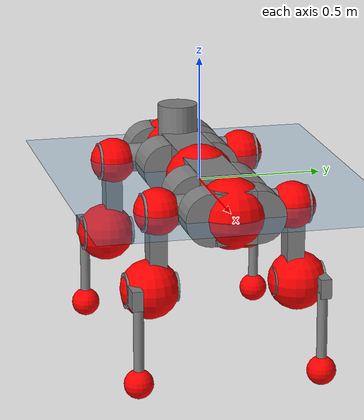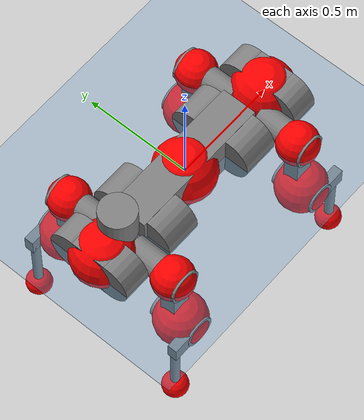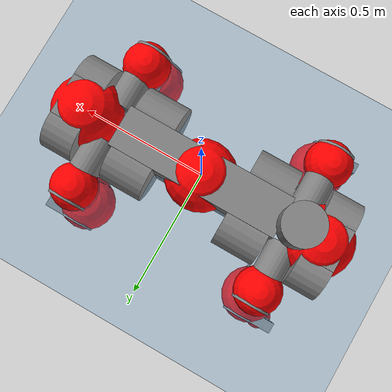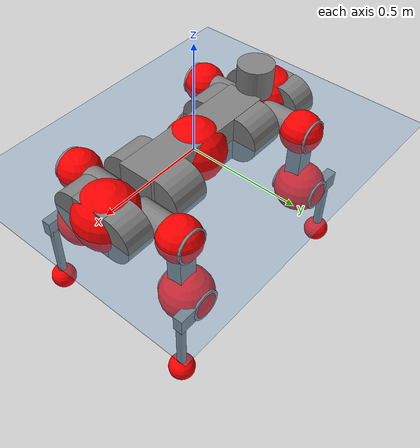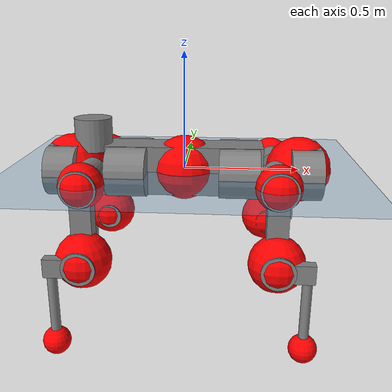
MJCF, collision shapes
<mujoco model="anymal_c">
  <compiler angle="radian" assetdir="assets" balanceinertia="true" inertiafromgeom="false"/>

  <option timestep="0.005" density="1.2" viscosity="2e-05"/>

  <size nkey="1"/>

  <visual>
    <quality shadowsize="8192"/>
    <map shadowclip="0.5"/>
  </visual>

  <default>
    <default class="/">
      <material specular="0" shininess="0.25"/>
      <geom contype="0" conaffinity="0" group="1" solref="-1000 -80"/>
      <site size="0.01 0.005 0.005" group="5"/>
      <general forcelimited="true" forcerange="-80 80" biastype="affine" gainprm="80" biasprm="0 -80 -2"/>
      <default class="anymal_c">
        <joint armature="0.01" damping="0.01" frictionloss="0.1"/>
        <default class="visual">
          <geom type="mesh" group="2"/>
          <default class="visual_zflip"/>
        </default>
        <default class="collision">
          <geom type="cylinder" group="3"/>
          <default class="foot">
            <geom size="0.03 0 0" type="sphere" condim="6" priority="1" friction="0.8 0.02 0.01" solimp="0.015 1 0.03"/>
          </default>
        </default>
      </default>
      <default class="reward_collision_sphere">
        <geom group="5" rgba="1 0 0 1"/>
      </default>
    </default>
  </default>

  <asset>
    <texture type="skybox" colorspace="auto" name="//unnamed_texture_0" builtin="gradient" rgb1="0.95 0.95 0.95" rgb2="0.95 0.95 0.95" width="100" height="600"/>
    <texture type="2d" colorspace="auto" name="texplane" builtin="checker" rgb1="0.345 0.575 0.748" rgb2="0.345 0.575 0.748" markrgb="1 1 1" width="512" height="512"/>
    <texture type="2d" colorspace="linear" name="base" file="base.png"/>
    <texture type="2d" colorspace="linear" name="top_shell" file="top_shell.png"/>
    <texture type="2d" colorspace="linear" name="bottom_shell" file="bottom_shell.png"/>
    <texture type="2d" colorspace="linear" name="remote" file="remote.png"/>
    <texture type="2d" colorspace="linear" name="hatch" file="hatch.png"/>
    <texture type="2d" colorspace="linear" name="handle" file="handle.png"/>
    <texture type="2d" colorspace="linear" name="face" file="face.png"/>
    <texture type="2d" colorspace="linear" name="battery" file="battery.png"/>
    <texture type="2d" colorspace="linear" name="lidar_cage" file="lidar_cage.png"/>
    <texture type="2d" colorspace="linear" name="depth_camera" file="depth_camera.png"/>
    <texture type="2d" colorspace="linear" name="wide_angle_camera" file="wide_angle_camera.png"/>
    <texture type="2d" colorspace="linear" name="lidar" file="lidar.png"/>
    <texture type="2d" colorspace="linear" name="drive" file="drive.png"/>
    <texture type="2d" colorspace="linear" name="hip_l" file="hip_l.png"/>
    <texture type="2d" colorspace="linear" name="shank_l" file="shank_l.png"/>
    <texture type="2d" colorspace="linear" name="foot" file="foot.png"/>
    <texture type="2d" colorspace="linear" name="thigh" file="thigh.png"/>
    <texture type="2d" colorspace="linear" name="shank_r" file="shank_r.png"/>
    <texture type="2d" colorspace="linear" name="hip_r" file="hip_r.png"/>
    <material name="MatPlane" class="/" texture="texplane" texuniform="true" texrepeat="2 2" specular="0.9" shininess="0.5"/>
    <material name="black_plastic" class="/" rgba="0.007 0.007 0.007 1"/>
    <material name="green" class="/" rgba="0.052 0.178 0.033 1"/>
    <material name="red" class="/" rgba="0.178 0.006 0.005 1"/>
    <material name="yellow" class="/" rgba="0.178 0.119 0.006 1"/>
    <material name="lwl" class="/" rgba="0.8 0.8 0.8 1"/>
    <material name="base" class="/" texture="base"/>
    <material name="top_shell" class="/" texture="top_shell"/>
    <material name="bottom_shell" class="/" texture="bottom_shell"/>
    <material name="hip_l" class="/" texture="hip_l"/>
    <material name="thigh" class="/" texture="thigh"/>
    <material name="shank_l" class="/" texture="shank_l"/>
    <material name="foot" class="/" texture="foot"/>
    <material name="hip_r" class="/" texture="hip_r"/>
    <material name="shank" class="/" texture="shank_r"/>
    <material name="hatch" class="/" texture="hatch"/>
    <material name="remote" class="/" texture="remote"/>
    <material name="handle" class="/" texture="handle"/>
    <material name="face" class="/" texture="face"/>
    <material name="depth_camera" class="/" texture="depth_camera"/>
    <material name="wide_angle_camera" class="/" texture="wide_angle_camera"/>
    <material name="battery" class="/" texture="battery"/>
    <material name="lidar_cage" class="/" texture="lidar_cage"/>
    <material name="lidar" class="/" texture="lidar"/>
    <material name="drive" class="/" texture="drive"/>
    <mesh name="base_0" class="/" file="base_0.obj"/>
    <mesh name="base_1" class="/" file="base_1.obj"/>
    <mesh name="base_2" class="/" file="base_2.obj"/>
    <mesh name="base_3" class="/" file="base_3.obj"/>
    <mesh name="base_4" class="/" file="base_4.obj"/>
    <mesh name="base_5" class="/" file="base_5.obj"/>
    <mesh name="top_shell" class="/" file="top_shell.obj"/>
    <mesh name="bottom_shell" class="/" file="bottom_shell.obj"/>
    <mesh name="remote" class="/" file="remote.obj"/>
    <mesh name="handle" class="/" file="handle.obj"/>
    <mesh name="face" class="/" file="face.obj"/>
    <mesh name="wide_angle_camera" class="/" file="wide_angle_camera.obj"/>
    <mesh name="depth_camera" class="/" file="depth_camera.obj"/>
    <mesh name="battery" class="/" file="battery.obj"/>
    <mesh name="lidar_cage" class="/" file="lidar_cage.obj"/>
    <mesh name="lidar" class="/" file="lidar.obj"/>
    <mesh name="drive" class="/" file="drive.obj"/>
    <mesh name="hip_l" class="/" file="hip_l.obj"/>
    <mesh name="thigh" class="/" file="thigh.obj"/>
    <mesh name="shank_l" class="/" file="shank_l.obj"/>
    <mesh name="foot" class="/" file="foot.obj"/>
    <mesh name="hip_r" class="/" file="hip_r.obj"/>
    <mesh name="hatch" class="/" file="hatch.obj"/>
    <mesh name="shank_r" class="/" file="shank_r.obj"/>
  </asset>

  <worldbody>
    <geom name="floor" class="/" size="100 100 0.125" type="plane" group="0" material="MatPlane"/>
    <light name="toplight_shadow" class="/" pos="0 0 5" dir="0.0990148 0.0990148 -0.990148" type="directional" ambient="0.04 0.04 0.04" diffuse="0.55 0.55 0.55" specular="0.12 0.12 0.12"/>
    <light name="toplight_fill" class="/" pos="0 0 5" dir="0.0990148 0.0990148 -0.990148" type="directional" castshadow="false" ambient="0.04 0.04 0.04" diffuse="0.3 0.3 0.3" specular="0.08 0.08 0.08"/>
    <body name="trunk" childclass="anymal_c" pos="0.000728768 0.00279771 0.00187659" quat="1 -4.84342e-05 3.12774e-05 -4.36047e-05">
      <inertial pos="0.00445541 0.00349532 0.0502554" quat="0.486094 0.517472 0.478039 0.517121" mass="31.6172" diaginertia="1.04537 2.48714 0.33668"/>
      <joint name="//unnamed_joint_0" type="free" armature="0" damping="0" frictionloss="0"/>
      <geom name="//unnamed_geom_1" class="visual" material="green" mesh="base_0"/>
      <geom name="//unnamed_geom_2" class="visual" material="yellow" mesh="base_1"/>
      <geom name="//unnamed_geom_3" class="visual" material="red" mesh="base_2"/>
      <geom name="//unnamed_geom_4" class="visual" material="black_plastic" mesh="base_3"/>
      <geom name="//unnamed_geom_5" class="visual" material="lwl" mesh="base_4"/>
      <geom name="//unnamed_geom_6" class="visual" material="base" mesh="base_5"/>
      <geom name="trunk_1" class="collision" size="0.340821 0.0822673 0.105772" type="box"/>
      <geom name="trunk_2" class="collision" size="0.105772 0.0852054" pos="0.240191 0.0932113 0" quat="0.707107 0 0.707107 0"/>
      <geom name="trunk_3" class="collision" size="0.105772 0.0852054" pos="-0.240191 0.0932113 0" quat="0.707107 0 0.707107 0"/>
      <geom name="trunk_4" class="collision" size="0.105772 0.0852054" pos="0.240191 -0.0932113 0" quat="0.707107 0 0.707107 0"/>
      <geom name="trunk_5" class="collision" size="0.105772 0.0852054" pos="-0.240191 -0.0932113 0" quat="0.707107 0 0.707107 0"/>
      <geom name="//unnamed_geom_12" class="visual" material="top_shell" mesh="top_shell"/>
      <geom name="//unnamed_geom_13" class="visual" material="bottom_shell" mesh="bottom_shell"/>
      <geom name="//unnamed_geom_14" class="visual" material="remote" mesh="remote"/>
      <geom name="//unnamed_geom_15" class="visual" material="handle" mesh="handle"/>
      <geom name="//unnamed_geom_16" class="visual" pos="0.457743 0 0" quat="1 0 0 0" material="face" mesh="face"/>
      <geom name="trunk_6" class="collision" size="0.0646386 0.0822673 0.105772" pos="0.518481 0 0" type="box"/>
      <geom name="//unnamed_geom_18" class="collision" size="0.105772 0.0646386" pos="0.518481 0.0932113 0" quat="0.707107 0 0.707107 0"/>
      <geom name="//unnamed_geom_19" class="collision" size="0.105772 0.0646386" pos="0.518481 -0.0932113 0" quat="0.707107 0 0.707107 0"/>
      <geom name="//unnamed_geom_20" class="visual" pos="0.509812 0 -0.0317126" quat="0.965926 0 0.258819 0" material="depth_camera" mesh="depth_camera"/>
      <geom name="//unnamed_geom_21" class="visual" pos="0.56652 0 0.0163146" material="wide_angle_camera" mesh="wide_angle_camera"/>
      <geom name="//unnamed_geom_22" class="visual_zflip" pos="-0.457743 0 0" quat="0 0 0 1" material="face" mesh="face"/>
      <geom name="trunk_7" class="collision" size="0.0646386 0.0822673 0.105772" pos="-0.518481 0 0" quat="0 0 0 1" type="box"/>
      <geom name="//unnamed_geom_24" class="collision" size="0.105772 0.0646386" pos="-0.518481 -0.0932113 0" quat="0 -0.707107 0 0.707107"/>
      <geom name="//unnamed_geom_25" class="collision" size="0.105772 0.0646386" pos="-0.518481 0.0932113 0" quat="0 -0.707107 0 0.707107"/>
      <geom name="//unnamed_geom_26" class="visual" pos="-0.509812 0 -0.0317126" quat="0 -0.258819 0 0.965926" material="depth_camera" mesh="depth_camera"/>
      <geom name="//unnamed_geom_27" class="visual_zflip" pos="-0.56652 0 0.0163146" quat="0 0 0 1" material="wide_angle_camera" mesh="wide_angle_camera"/>
      <geom name="//unnamed_geom_28" class="visual" material="battery" mesh="battery"/>
      <geom name="//unnamed_geom_29" class="visual" pos="0 0.104795 0.0317696" quat="0.683013 -0.183013 0.183013 0.683013" material="depth_camera" mesh="depth_camera"/>
      <geom name="//unnamed_geom_30" class="visual" pos="0 -0.104795 0.0317696" quat="0.683013 0.183013 0.183013 -0.683013" material="depth_camera" mesh="depth_camera"/>
      <geom name="//unnamed_geom_31" class="visual" pos="-0.401975 0 0.080102" quat="1 0 0 0" material="lidar_cage" mesh="lidar_cage"/>
      <geom name="trunk_8" class="collision" size="0.0822673 0.0705148" pos="-0.401975 0 0.145491"/>
      <geom name="//unnamed_geom_33" class="visual" pos="-0.401975 8.92856e-05 0.154973" quat="0.707107 0 0 -0.707107" material="lidar" mesh="lidar"/>
      <geom name="//unnamed_geom_34" class="visual" pos="0.331188 0.138399 4.17051e-09" quat="0.258819 0.965926 0 0" material="drive" mesh="drive"/>
      <geom name="//unnamed_geom_35" class="visual" pos="0.331188 -0.138399 -4.17051e-09" quat="0.258819 -0.965926 0 0" material="drive" mesh="drive"/>
      <geom name="//unnamed_geom_36" class="visual" pos="-0.331188 0.138399 -4.17051e-09" quat="0 0 0.965926 -0.258819" material="drive" mesh="drive"/>
      <geom name="//unnamed_geom_37" class="visual" pos="-0.331188 -0.138399 4.17051e-09" quat="0 0 -0.965926 -0.258819" material="drive" mesh="drive"/>
      <geom name="//unnamed_geom_38" class="visual" pos="0.128102 0 0.079557" quat="1 0 0 0" material="hatch" mesh="hatch"/>
      <geom name="//unnamed_geom_39" class="reward_collision_sphere" size="0.14103"/>
      <geom name="//unnamed_geom_40" class="reward_collision_sphere" size="0.14103" pos="0.496947 0 0"/>
      <geom name="//unnamed_geom_41" class="reward_collision_sphere" size="0.14103" pos="-0.496947 0 0"/>
      <site name="imu" pos="0.262277 0.00885141 0.0643527" size="0.0117525"/>
      <camera name="track" pos="0 -2.66318 0" quat="0.707107 0.707107 0 0" mode="trackcom"/>
      <camera name="ego_camera" pos="0.496947 0 -0.0435929" quat="-0.5 -0.5 0.5 0.5"/>
      <body name="LF_HIP" pos="0.329877 0.131754 -0.00479988" quat="0.257987 0.966148 0.00106445 -0.000762132">
        <inertial pos="0.060428 -0.0204923 -0.00873386" quat="-0.134995 0.71139 -0.128177 0.677695" mass="4.63713" diaginertia="0.00962638 0.0219147 0.00497254"/>
        <joint name="LF_HAA" pos="0 0 0" axis="1 -0.000189519 0.000392815" range="-0.860534 0.488245" armature="0.011114" damping="0.0210976" frictionloss="0.108457"/>
        <geom name="//unnamed_geom_42" class="visual" pos="0 0.000245332 -4.02957e-05" quat="0.258819 -0.965926 0 0" material="hip_l" mesh="hip_l"/>
        <geom name="//unnamed_geom_43" class="visual" pos="0.0661492 -0.0830602 -0.0461666" quat="0.183013 -0.683013 0.683013 0.183013" material="drive" mesh="drive"/>
        <geom name="//unnamed_geom_44" class="collision" size="0.0587623 0.0822673" pos="0.0661492 -0.0159255 -0.00752522" quat="-0.353553 -0.612372 0.612372 -0.353553"/>
        <body name="LF_THIGH" pos="0.0659354 -0.103508 -0.0471063" quat="0.183058 -0.683012 0.683264 0.182027">
          <inertial pos="0.0320861 -0.000744244 -0.265513" quat="0.993394 0.013126 -0.0848968 0.0760863" mass="4.98148" diaginertia="0.051578 0.126476 0.00636715"/>
          <joint name="LF_HFE" pos="0 0 0" axis="0.999886 0.0143679 -0.00464835" stiffness="0.0180102" range="-3.13341 3.03579" armature="0.00977052" damping="0.0253498" frictionloss="0.125367"/>
          <geom name="//unnamed_geom_45" class="visual" pos="-0.00452164 -7.12505e-06 0" quat="0.707107 0 0 -0.707107" material="thigh" mesh="thigh"/>
          <geom name="//unnamed_geom_46" class="collision" size="0.076391 0.0470099" pos="0.0441731 0 0" quat="0.5 0.5 -0.5 -0.5"/>
          <geom name="//unnamed_geom_47" class="collision" size="0.0440717 0.0352574 0.166079" pos="0.0331298 0 -0.154007" quat="0.707107 0 0 -0.707107" type="box"/>
          <geom name="//unnamed_geom_48" class="visual" pos="0.110764 0 -0.310599" quat="1 0 0 0" material="drive" mesh="drive"/>
          <geom name="//unnamed_geom_49" class="collision" size="0.0587623 0.0822673" pos="0.0334611 0 -0.310599" quat="0.707107 0 0.707107 0"/>
          <geom name="//unnamed_geom_50" class="reward_collision_sphere" size="0.0940197" pos="0.0276082 0 0"/>
          <body name="LF_SHANK" pos="0.108904 0.0050192 -0.31221" quat="1 -3.0116e-05 7.62297e-06 1.07399e-05">
            <inertial pos="0.00473507 -0.0812648 -0.0816016" quat="0.99321 -0.11392 0.00146622 -0.0235425" mass="0.920803" diaginertia="0.0170864 0.0356616 0.00183139"/>
            <joint name="LF_KFE" pos="0 0 0" axis="0.999982 -0.00108468 0.00597077" range="-3.01806 3.13085" armature="0.0124297" damping="0.010311" frictionloss="0.120938"/>
            <geom name="//unnamed_geom_51" class="visual" pos="-0.00147441 -0.00786163 0" quat="0.707107 0 0 -0.707107" material="shank_l" mesh="shank_l"/>
            <geom name="LF_kfe_act" class="collision" size="0.0705148 0.0235049" pos="0.0220865 0 0" quat="0.5 0.5 -0.5 -0.5"/>
            <geom name="//unnamed_geom_53" class="collision" size="0.0675755 0.0396646 0.0223297" pos="0.0220865 -0.0765651 0" quat="0.5 0.5 -0.5 -0.5" type="box"/>
            <geom name="//unnamed_geom_54" class="visual" pos="0.0144118 -0.119647 -0.368327" quat="0.382683 0 0 -0.92388" material="foot" mesh="foot"/>
            <geom name="LF_calf" class="collision" size="0.0205668 0.166006" pos="0.0144115 -0.117113 -0.184164" quat="0.707107 0 0 -0.707107"/>
            <geom name="LF_foot" class="foot" size="0.0305391" pos="0.0144115 -0.117113 -0.343806" quat="0.707107 0 0 -0.707107"/>
            <geom name="//unnamed_geom_57" class="reward_collision_sphere" size="0.117525" pos="-0.0552163 0 0"/>
            <geom name="//unnamed_geom_58" class="reward_collision_sphere" size="0.0587623" pos="0.0144115 -0.117113 -0.343806"/>
            <site name="LF_foot" class="foot" pos="0.0144115 -0.117113 -0.343806" quat="0.707107 0 0 -0.707107" size="0.0117525"/>
          </body>
        </body>
      </body>
      <body name="RF_HIP" pos="0.332749 -0.138109 -0.00105009" quat="0.25872 -0.965952 -0.000225583 -0.000237507">
        <inertial pos="0.0612621 0.0230101 -0.00675971" quat="0.141073 0.676515 0.125938 0.711734" mass="4.85488" diaginertia="0.00960649 0.022922 0.00496746"/>
        <joint name="RF_HAA" pos="0 0 0" axis="0.999979 0.00437855 0.00477265" range="-0.479029 0.715026" armature="0.0128678" damping="0.0206829" frictionloss="0.126421"/>
        <geom name="//unnamed_geom_59" class="visual" pos="0 -0.000245331 -4.02956e-05" quat="0.258819 0.965926 0 0" material="hip_r" mesh="hip_r"/>
        <geom name="//unnamed_geom_60" class="visual" pos="0.0661492 0.0830602 -0.0461666" quat="0.183013 0.683013 0.683013 -0.183013" material="drive" mesh="drive"/>
        <geom name="//unnamed_geom_61" class="collision" size="0.0587623 0.0822673" pos="0.0661492 0.0159255 -0.00752522" quat="-0.353553 0.612372 0.612372 0.353553"/>
        <body name="RF_THIGH" pos="0.0610721 0.0897583 -0.0460056" quat="0.182759 0.682997 0.683042 -0.183216">
          <inertial pos="0.0338229 0.00663652 -0.268798" quat="0.992442 -0.00750994 -0.080955 0.0919147" mass="4.64574" diaginertia="0.0485205 0.11994 0.00605438"/>
          <joint name="RF_HFE" pos="0 0 0" axis="0.99997 0.00468104 -0.00617296" range="-3.03247 3.1315" armature="0.012978" damping="0.0222573" frictionloss="0.116092"/>
          <geom name="//unnamed_geom_62" class="visual" pos="-0.00452164 -7.12505e-06 0" quat="0.707107 0 0 -0.707107" material="thigh" mesh="thigh"/>
          <geom name="//unnamed_geom_63" class="collision" size="0.076391 0.0470099" pos="0.0441731 0 0" quat="0.5 0.5 0.5 0.5"/>
          <geom name="//unnamed_geom_64" class="collision" size="0.0440717 0.0352574 0.166079" pos="0.0331298 0 -0.154007" quat="0.707107 0 0 0.707107" type="box"/>
          <geom name="//unnamed_geom_65" class="visual" pos="0.110764 0 -0.310599" quat="1 0 0 0" material="drive" mesh="drive"/>
          <geom name="//unnamed_geom_66" class="collision" size="0.0587623 0.0822673" pos="0.0334611 0 -0.310599" quat="0.707107 0 0.707107 0"/>
          <geom name="//unnamed_geom_67" class="reward_collision_sphere" size="0.0940197" pos="0.0276082 0 0"/>
          <body name="RF_SHANK" pos="0.116112 0.00301215 -0.309606" quat="0.999998 -0.000954125 -0.00118062 -0.00131882">
            <inertial pos="0.0074309 0.0807364 -0.0895747" quat="0.992453 0.11978 0.0014279 0.0262318" mass="0.980937" diaginertia="0.017237 0.0384755 0.00176558"/>
            <joint name="RF_KFE" pos="0 0 0" axis="0.999517 -0.0262773 -0.0165781" range="-3.08223 3.12354" armature="0.0088861" damping="0" frictionloss="0.14045"/>
            <geom name="//unnamed_geom_68" class="visual" pos="-0.0014744 0.00786161 0" quat="0.707107 0 0 0.707107" material="shank" mesh="shank_r"/>
            <geom name="RF_kfe_act" class="collision" size="0.0705148 0.0235049" pos="0.0220865 0 0" quat="0.5 0.5 0.5 0.5"/>
            <geom name="//unnamed_geom_70" class="collision" size="0.0675755 0.0396646 0.0223297" pos="0.0220865 0.0765651 0" quat="0.5 0.5 0.5 0.5" type="box"/>
            <geom name="//unnamed_geom_71" class="visual" pos="0.0144111 0.119647 -0.368327" quat="0.382683 0 0 0.92388" material="foot" mesh="foot"/>
            <geom name="RF_calf" class="collision" size="0.0205668 0.166006" pos="0.0144115 0.117113 -0.184164" quat="0.707107 0 0 0.707107"/>
            <geom name="RF_foot" class="foot" size="0.0313704" pos="0.0144115 0.117113 -0.343806" quat="0.707107 0 0 0.707107"/>
            <geom name="//unnamed_geom_74" class="reward_collision_sphere" size="0.117525" pos="-0.0552163 0 0"/>
            <geom name="//unnamed_geom_75" class="reward_collision_sphere" size="0.0587623" pos="0.0144115 0.117113 -0.343806"/>
            <site name="RF_foot" class="foot" pos="0.0144115 0.117113 -0.343806" quat="0.707107 0 0 0.707107" size="0.0117525"/>
          </body>
        </body>
      </body>
      <body name="LH_HIP" pos="-0.327656 0.137598 0.0044828" quat="0.000513709 1.38852e-05 0.965733 -0.259537">
        <inertial pos="0.0622644 0.0237772 -0.00929318" quat="0.130969 0.682872 0.120288 0.708564" mass="4.67476" diaginertia="0.00964294 0.0209011 0.00515603"/>
        <joint name="LH_HAA" pos="0 0 0" axis="0.999959 0.00849877 -0.0029715" range="-0.449418 0.701627" armature="0.0113496" damping="0.0181459" frictionloss="0.131419"/>
        <geom name="//unnamed_geom_76" class="visual" pos="0 -0.000245331 -4.02956e-05" quat="-0.258819 -0.965926 0 0" material="hip_r" mesh="hip_r"/>
        <geom name="//unnamed_geom_77" class="visual" pos="0.0661492 0.0830602 -0.0461666" quat="0.183013 0.683013 0.683013 -0.183013" material="drive" mesh="drive"/>
        <geom name="//unnamed_geom_78" class="collision" size="0.0587623 0.0822673" pos="0.0661492 0.0159255 -0.00752522" quat="-0.353553 0.612372 0.612372 0.353553"/>
        <body name="LH_THIGH" pos="0.0670263 0.0943546 -0.0398965" quat="0.182787 0.683945 0.682079 -0.183236">
          <inertial pos="0.0334765 -0.0023088 -0.262124" quat="0.993015 -0.00710211 -0.0794779 0.0869154" mass="4.62834" diaginertia="0.0491701 0.128676 0.00638444"/>
          <joint name="LH_HFE" pos="0 0 0" axis="0.999992 -0.00387326 0.000569795" range="-3.0848 3.12016" armature="0.0110793" damping="0.0256809" frictionloss="0.106121"/>
          <geom name="//unnamed_geom_79" class="visual" pos="-0.00452164 -7.12505e-06 0" quat="0.707107 0 0 -0.707107" material="thigh" mesh="thigh"/>
          <geom name="//unnamed_geom_80" class="collision" size="0.076391 0.0470099" pos="0.0441731 0 0" quat="0.5 0.5 -0.5 -0.5"/>
          <geom name="//unnamed_geom_81" class="collision" size="0.0440717 0.0352574 0.166079" pos="0.0331298 0 -0.154007" quat="0.707107 0 0 -0.707107" type="box"/>
          <geom name="//unnamed_geom_82" class="visual" pos="0.110764 0 -0.310599" quat="1 0 0 0" material="drive" mesh="drive"/>
          <geom name="//unnamed_geom_83" class="collision" size="0.0587623 0.0822673" pos="0.0334611 0 -0.310599" quat="0.707107 0 0.707107 0"/>
          <geom name="//unnamed_geom_84" class="reward_collision_sphere" size="0.0940197" pos="0.0276082 0 0"/>
          <body name="LH_SHANK" pos="0.11167 0.00690799 -0.307608" quat="0.999999 0.000969909 -0.000483371 -0.000579154">
            <inertial pos="0.00419835 0.0818269 -0.0903887" quat="0.99261 0.118038 0.00429488 0.027807" mass="0.934641" diaginertia="0.015665 0.0376513 0.00169422"/>
            <joint name="LH_KFE" pos="0 0 0" axis="0.999967 0.00148343 -0.00802454" range="-3.26842 3.19205" armature="0.0119867" damping="0.0077837" frictionloss="0.117135"/>
            <geom name="//unnamed_geom_85" class="visual" pos="-0.0014744 0.00786161 0" quat="-0.707107 0 0 -0.707107" material="shank" mesh="shank_r"/>
            <geom name="LH_kfe_act" class="collision" size="0.0705148 0.0235049" pos="0.0220865 0 0" quat="0.5 0.5 -0.5 -0.5"/>
            <geom name="//unnamed_geom_87" class="collision" size="0.0675755 0.0396646 0.0223297" pos="0.0220865 0.0765651 0" quat="0.5 0.5 -0.5 -0.5" type="box"/>
            <geom name="//unnamed_geom_88" class="visual" pos="0.0144111 0.119647 -0.368327" quat="-0.382683 0 0 -0.92388" material="foot" mesh="foot"/>
            <geom name="LH_calf" class="collision" size="0.0205668 0.166006" pos="0.0144115 0.117113 -0.184164" quat="0.707107 0 0 -0.707107"/>
            <geom name="LH_foot" class="foot" size="0.0373707" pos="0.0144115 0.117113 -0.343806" quat="0.707107 0 0 -0.707107"/>
            <geom name="//unnamed_geom_91" class="reward_collision_sphere" size="0.117525" pos="-0.0552163 0 0"/>
            <geom name="//unnamed_geom_92" class="reward_collision_sphere" size="0.0587623" pos="0.0144115 0.117113 -0.343806"/>
            <site name="LH_foot" class="foot" pos="0.0144115 0.117113 -0.343806" quat="0.707107 0 0 -0.707107" size="0.0117525"/>
          </body>
        </body>
      </body>
      <body name="RH_HIP" pos="-0.329234 -0.142498 -0.00110684" quat="-0.000676031 -0.00162532 -0.966094 -0.258185">
        <inertial pos="0.0646545 -0.0242206 -0.00770415" quat="-0.136573 0.712317 -0.138963 0.674271" mass="4.54381" diaginertia="0.00925562 0.0207977 0.0047062"/>
        <joint name="RH_HAA" pos="0 0 0" axis="0.999763 -0.00340385 -0.0215171" stiffness="0.00103937" range="-0.769478 0.591207" armature="0.011699" damping="0.00437221" frictionloss="0.129639"/>
        <geom name="//unnamed_geom_93" class="visual" pos="0 0.000245332 -4.02957e-05" quat="-0.258819 0.965926 0 0" material="hip_l" mesh="hip_l"/>
        <geom name="//unnamed_geom_94" class="visual" pos="0.0661492 -0.0830602 -0.0461666" quat="-0.183013 0.683013 -0.683013 -0.183013" material="drive" mesh="drive"/>
        <geom name="//unnamed_geom_95" class="collision" size="0.0587623 0.0822673" pos="0.0661492 -0.0159255 -0.00752522" quat="0.353553 0.612372 -0.612372 0.353553"/>
        <body name="RH_THIGH" pos="0.0668386 -0.0988584 -0.0458474" quat="-0.182984 0.684489 -0.681959 -0.181448">
          <inertial pos="0.0341706 0.00487554 -0.268477" quat="0.994152 -0.00245336 -0.0794346 0.0731098" mass="5.09936" diaginertia="0.0512942 0.12754 0.00647527"/>
          <joint name="RH_HFE" pos="0 0 0" axis="0.999677 -0.0129757 -0.0218305" range="-3.09098 3.13374" armature="0.0110714" damping="0.00994356" frictionloss="0.131432"/>
          <geom name="//unnamed_geom_96" class="visual" pos="-0.00452164 -7.12505e-06 0" quat="0.707107 0 0 -0.707107" material="thigh" mesh="thigh"/>
          <geom name="//unnamed_geom_97" class="collision" size="0.076391 0.0470099" pos="0.0441731 0 0" quat="0.5 0.5 0.5 0.5"/>
          <geom name="//unnamed_geom_98" class="collision" size="0.0440717 0.0352574 0.166079" pos="0.0331298 0 -0.154007" quat="0.707107 0 0 0.707107" type="box"/>
          <geom name="//unnamed_geom_99" class="visual" pos="0.110764 0 -0.310599" quat="1 0 0 0" material="drive" mesh="drive"/>
          <geom name="//unnamed_geom_100" class="collision" size="0.0587623 0.0822673" pos="0.0334611 0 -0.310599" quat="0.707107 0 0.707107 0"/>
          <geom name="//unnamed_geom_101" class="reward_collision_sphere" size="0.0940197" pos="0.0276082 0 0"/>
          <body name="RH_SHANK" pos="0.11857 0.00316188 -0.307615" quat="1 0.000261028 -0.000138817 2.77139e-05">
            <inertial pos="-0.00102561 -0.0817674 -0.0898808" quat="0.992876 -0.117092 -0.0056186 -0.0213505" mass="0.935166" diaginertia="0.0156321 0.0376635 0.00176686"/>
            <joint name="RH_KFE" pos="0 0 0" axis="0.999653 -0.00623336 -0.0255923" range="-3.06412 3.03507" armature="0.0146677" damping="0.0111167" frictionloss="0.115979"/>
            <geom name="//unnamed_geom_102" class="visual" pos="-0.00147441 -0.00786163 0" quat="0.707107 0 0 -0.707107" material="shank_l" mesh="shank_l"/>
            <geom name="RH_kfe_act" class="collision" size="0.0705148 0.0235049" pos="0.0220865 0 0" quat="0.5 0.5 0.5 0.5"/>
            <geom name="//unnamed_geom_104" class="collision" size="0.0675755 0.0396646 0.0223297" pos="0.0220865 -0.0765651 0" quat="0.5 0.5 0.5 0.5" type="box"/>
            <geom name="//unnamed_geom_105" class="visual" pos="0.0144118 -0.119647 -0.368327" quat="0.382683 0 0 -0.92388" material="foot" mesh="foot"/>
            <geom name="RH_calf" class="collision" size="0.0205668 0.166006" pos="0.0144115 -0.117113 -0.184164" quat="0.707107 0 0 0.707107"/>
            <geom name="RH_foot" class="foot" size="0.0343843" pos="0.0144115 -0.117113 -0.343806" quat="0.707107 0 0 0.707107"/>
            <geom name="//unnamed_geom_108" class="reward_collision_sphere" size="0.117525" pos="-0.0552163 0 0"/>
            <geom name="//unnamed_geom_109" class="reward_collision_sphere" size="0.0587623" pos="0.0144115 -0.117113 -0.343806"/>
            <site name="RH_foot" class="foot" pos="0.0144115 -0.117113 -0.343806" quat="0.707107 0 0 0.707107" size="0.0117525"/>
          </body>
        </body>
      </body>
    </body>
  </worldbody>

  <contact>
    <pair class="/" geom1="floor" geom2="LF_foot" name="//unnamed_contact_0"/>
    <pair class="/" geom1="floor" geom2="RF_foot" name="//unnamed_contact_1"/>
    <pair class="/" geom1="floor" geom2="LH_foot" name="//unnamed_contact_2"/>
    <pair class="/" geom1="floor" geom2="RH_foot" name="//unnamed_contact_3"/>
  </contact>

  <actuator>
    <general name="LF_HAA" class="/" joint="LF_HAA" forcerange="-69.4738 69.4738" gainprm="82.0211" biasprm="0 -82.0211 -2.43389"/>
    <general name="LF_HFE" class="/" joint="LF_HFE" forcerange="-99.078 99.078" gainprm="82.0211" biasprm="0 -82.0211 -2.43389"/>
    <general name="LF_KFE" class="/" joint="LF_KFE" forcerange="-87.4127 87.4127" gainprm="82.0211" biasprm="0 -82.0211 -2.43389"/>
    <general name="RF_HAA" class="/" joint="RF_HAA" forcerange="-75.4096 75.4096" gainprm="82.0211" biasprm="0 -82.0211 -2.43389"/>
    <general name="RF_HFE" class="/" joint="RF_HFE" forcerange="-75.5493 75.5493" gainprm="82.0211" biasprm="0 -82.0211 -2.43389"/>
    <general name="RF_KFE" class="/" joint="RF_KFE" forcerange="-88.9775 88.9775" gainprm="82.0211" biasprm="0 -82.0211 -2.43389"/>
    <general name="LH_HAA" class="/" joint="LH_HAA" forcerange="-87.8526 87.8526" gainprm="82.0211" biasprm="0 -82.0211 -2.43389"/>
    <general name="LH_HFE" class="/" joint="LH_HFE" forcerange="-104.702 104.702" gainprm="82.0211" biasprm="0 -82.0211 -2.43389"/>
    <general name="LH_KFE" class="/" joint="LH_KFE" forcerange="-96.2744 96.2744" gainprm="82.0211" biasprm="0 -82.0211 -2.43389"/>
    <general name="RH_HAA" class="/" joint="RH_HAA" forcerange="-115.404 115.404" gainprm="82.0211" biasprm="0 -82.0211 -2.43389"/>
    <general name="RH_HFE" class="/" joint="RH_HFE" forcerange="-87.47 87.47" gainprm="82.0211" biasprm="0 -82.0211 -2.43389"/>
    <general name="RH_KFE" class="/" joint="RH_KFE" forcerange="-93.4322 93.4322" gainprm="82.0211" biasprm="0 -82.0211 -2.43389"/>
  </actuator>

  <sensor>
    <gyro site="imu" name="imu_angular_velocity"/>
    <velocimeter site="imu" name="imu_linear_velocity"/>
    <framelinvel objtype="site" objname="LF_foot" name="LF_foot_global_linear_velocity"/>
    <framelinvel objtype="site" objname="RF_foot" name="RF_foot_global_linear_velocity"/>
    <framelinvel objtype="site" objname="LH_foot" name="LH_foot_global_linear_velocity"/>
    <framelinvel objtype="site" objname="RH_foot" name="RH_foot_global_linear_velocity"/>
  </sensor>

  <keyframe>
    <key name="home" qpos="0 0 0.55 1 0 0 0 0 0.4 -0.8 0 -0.4 0.8 0 -0.4 0.8 0 0.4 -0.8"/>
  </keyframe>
</mujoco>
